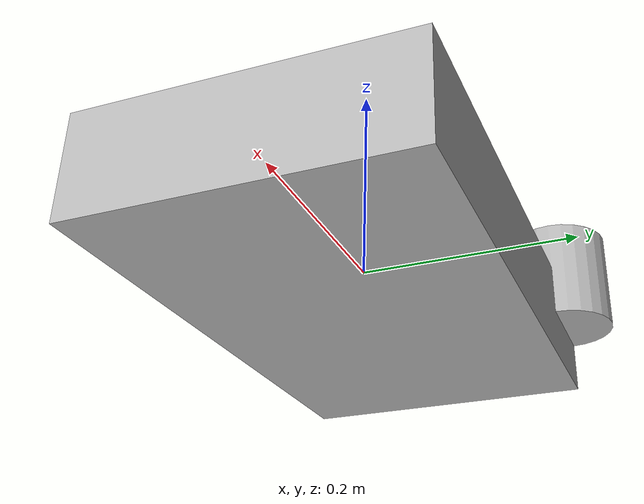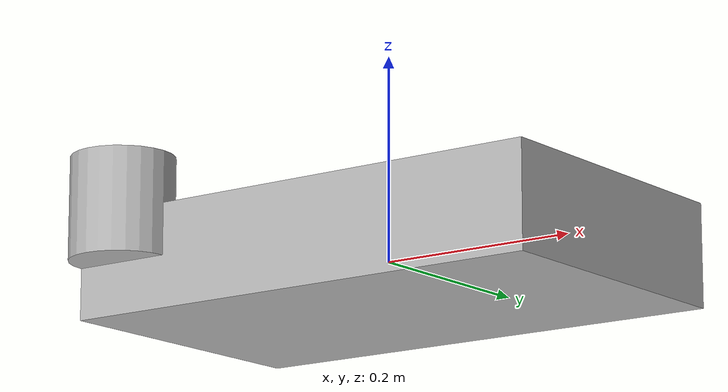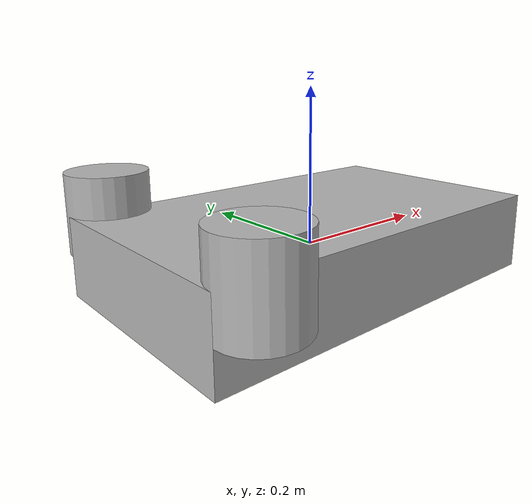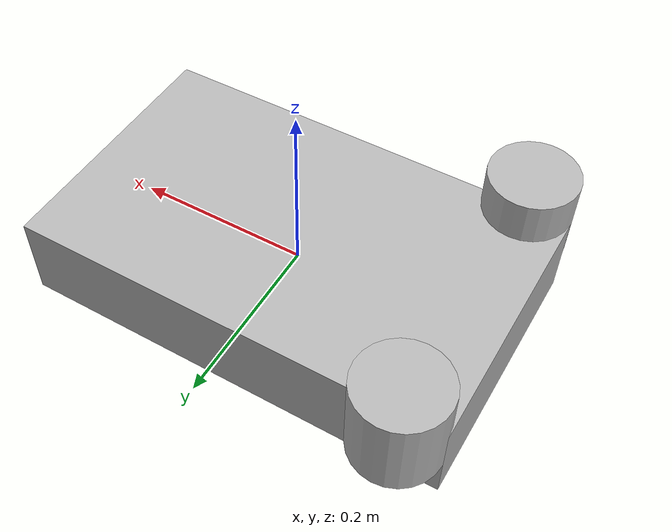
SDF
<sdf version="1.6">
  <model name="mobile_robot">
    <static>false</static>
    <!-- Base link -->
    <link name="base_link">
      <pose>0 0 0 0 0 0</pose>
      <inertial>
        <mass>2.0</mass>
        <inertia>
          <ixx>0.1</ixx>
          <iyy>0.1</iyy>
          <izz>0.1</izz>
        </inertia>
      </inertial>
      <collision name="base_collision">
        <geometry>
          <box>
            <size>0.5 0.3 0.1</size>
          </box>
        </geometry>
      </collision>
      <visual name="base_visual">
        <geometry>
          <box>
            <size>0.5 0.3 0.1</size>
          </box>
        </geometry>
      </visual>
    </link>

    <!-- Left wheel -->
    <link name="left_wheel">
      <pose>-0.2 0.15 0.05 0 0 0</pose>
      <inertial>
        <mass>0.5</mass>
        <inertia>
          <ixx>0.01</ixx>
          <iyy>0.01</iyy>
          <izz>0.01</izz>
        </inertia>
      </inertial>
      <collision name="left_wheel_collision">
        <geometry>
          <cylinder>
            <radius>0.05</radius>
            <length>0.1</length>
          </cylinder>
        </geometry>
      </collision>
      <visual name="left_wheel_visual">
        <geometry>
          <cylinder>
            <radius>0.05</radius>
            <length>0.1</length>
          </cylinder>
        </geometry>
      </visual>
    </link>

    <!-- Right wheel -->
    <link name="right_wheel">
      <pose>-0.2 -0.15 0.05 0 0 0</pose>
      <inertial>
        <mass>0.5</mass>
        <inertia>
          <ixx>0.01</ixx>
          <iyy>0.01</iyy>
          <izz>0.01</izz>
        </inertia>
      </inertial>
      <collision name="right_wheel_collision">
        <geometry>
          <cylinder>
            <radius>0.05</radius>
            <length>0.1</length>
          </cylinder>
        </geometry>
      </collision>
      <visual name="right_wheel_visual">
        <geometry>
          <cylinder>
            <radius>0.05</radius>
            <length>0.1</length>
          </cylinder>
        </geometry>
      </visual>
    </link>

    <!-- Joints for wheels -->
    <joint name="left_wheel_joint" type="revolute">
      <parent>base_link</parent>
      <child>left_wheel</child>
      <pose>-0.2 0.15 0 0 0 0</pose>
      <axis>
        <xyz>0 1 0</xyz>
        <dynamics>
          <damping>0.1</damping>
        </dynamics>
        <limit>
          <lower>-10.0</lower>
          <upper>10.0</upper>
        </limit>
      </axis>
    </joint>

    <joint name="right_wheel_joint" type="revolute">
      <parent>base_link</parent>
      <child>right_wheel</child>
      <pose>-0.2 -0.15 0 0 0 0</pose>
      <axis>
        <xyz>0 1 0</xyz>
        <dynamics>
          <damping>0.1</damping>
        </dynamics>
        <limit>
          <lower>-10.0</lower>
          <upper>10.0</upper>
        </limit>
      </axis>
    </joint>
  </model>
</sdf>
